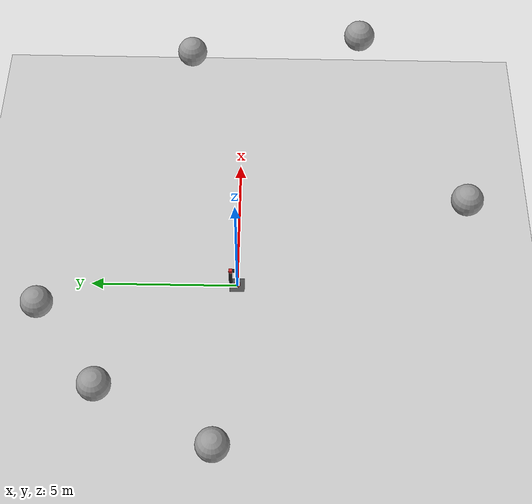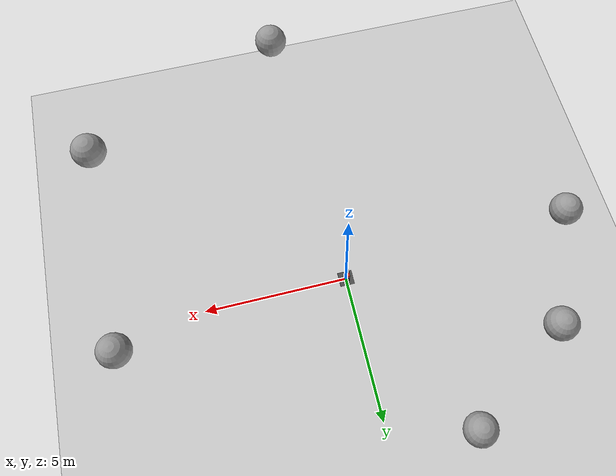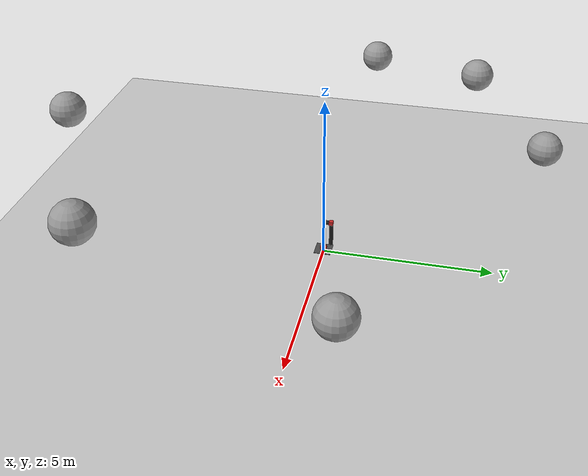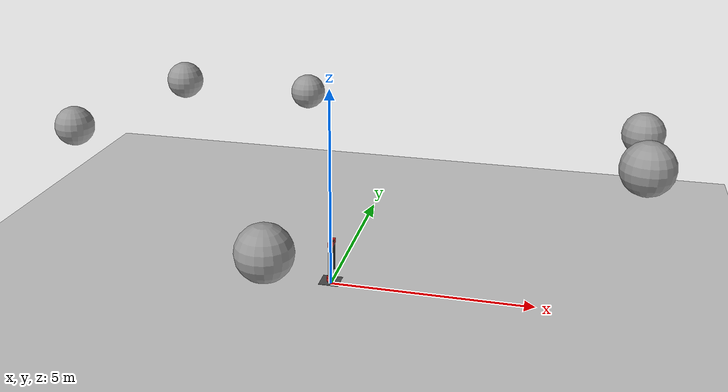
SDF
<sdf version="1.7">
 <world name="default">
  <include><uri>model://sun</uri></include>
  <include><uri>model://ground_plane</uri></include>
  <include><uri>model://PoseTest</uri></include>
  <gravity>0 0 -9.8</gravity>
  <magnetic_field>6e-06 2.3e-05 -4.2e-05</magnetic_field>
  <atmosphere type="adiabatic"/>
  <physics type="ode">
   <max_step_size>0.001</max_step_size>
   <real_time_factor>1</real_time_factor>
   <real_time_update_rate>1000</real_time_update_rate>
  </physics>
  <scene><ambient>0.4 0.4 0.4 1</ambient><background>0.7 0.7 0.7 1</background><shadows>1</shadows></scene>
  <spherical_coordinates>
   <surface_model>EARTH_WGS84</surface_model>
   <latitude_deg>0</latitude_deg>
   <longitude_deg>0</longitude_deg>
   <elevation>0</elevation>
   <heading_deg>0</heading_deg>
  </spherical_coordinates>
  <model name="unit_sphere">
   <pose>0.810404 -7.17312 4.39721 0 -0 0</pose>
   <link name="link">
    <inertial>
     <mass>1</mass>
     <inertia><ixx>0.1</ixx><ixy>0</ixy><ixz>0</ixz><iyy>0.1</iyy><iyz>0</iyz><izz>0.1</izz></inertia>
    </inertial>
    <collision name="collision"><geometry><sphere><radius>0.5</radius></sphere></geometry></collision>
    <visual name="visual">
     <geometry><sphere><radius>0.5</radius></sphere></geometry>
     <material>
      <script><name>Gazebo/Grey</name><uri>file://media/materials/scripts/gazebo.material</uri></script>
     </material>
    </visual>
    <kinematic>1</kinematic>
   </link>
  </model>
  <model name="unit_sphere_0">
   <pose>-6.85558 0.463626 3.40802 0 -0 0</pose>
   <link name="link">
    <inertial>
     <mass>1</mass>
     <inertia><ixx>0.1</ixx><ixy>0</ixy><ixz>0</ixz><iyy>0.1</iyy><iyz>0</iyz><izz>0.1</izz></inertia>
    </inertial>
    <collision name="collision"><geometry><sphere><radius>0.5</radius></sphere></geometry></collision>
    <visual name="visual">
     <geometry><sphere><radius>0.5</radius></sphere></geometry>
     <material>
      <script><name>Gazebo/Grey</name><uri>file://media/materials/scripts/gazebo.material</uri></script>
     </material>
    </visual>
    <kinematic>1</kinematic>
   </link>
  </model>
  <model name="unit_sphere_1">
   <pose>-2.27969 6.06715 3.01988 0 -0 0</pose>
   <link name="link">
    <inertial>
     <mass>1</mass>
     <inertia><ixx>0.1</ixx><ixy>0</ixy><ixz>0</ixz><iyy>0.1</iyy><iyz>0</iyz><izz>0.1</izz></inertia>
    </inertial>
    <collision name="collision"><geometry><sphere><radius>0.5</radius></sphere></geometry></collision>
    <visual name="visual">
     <geometry><sphere><radius>0.5</radius></sphere></geometry>
     <material>
      <script><name>Gazebo/Grey</name><uri>file://media/materials/scripts/gazebo.material</uri></script>
     </material>
    </visual>
    <kinematic>1</kinematic>
   </link>
  </model>
  <model name="unit_sphere_2">
   <pose>7.08686 1.6984 3.93607 0 -0 0</pose>
   <link name="link">
    <inertial>
     <mass>1</mass>
     <inertia><ixx>0.1</ixx><ixy>0</ixy><ixz>0</ixz><iyy>0.1</iyy><iyz>0</iyz><izz>0.1</izz></inertia>
    </inertial>
    <collision name="collision"><geometry><sphere><radius>0.5</radius></sphere></geometry></collision>
    <visual name="visual">
     <geometry><sphere><radius>0.5</radius></sphere></geometry>
     <material>
      <script><name>Gazebo/Grey</name><uri>file://media/materials/scripts/gazebo.material</uri></script>
     </material>
    </visual>
    <kinematic>1</kinematic>
   </link>
  </model>
  <model name="unit_sphere_3">
   <pose>6.78864 -3.9632 5.18841 0 -0 0</pose>
   <link name="link">
    <inertial>
     <mass>1</mass>
     <inertia><ixx>0.1</ixx><ixy>0</ixy><ixz>0</ixz><iyy>0.1</iyy><iyz>0</iyz><izz>0.1</izz></inertia>
    </inertial>
    <collision name="collision"><geometry><sphere><radius>0.5</radius></sphere></geometry></collision>
    <visual name="visual">
     <geometry><sphere><radius>0.5</radius></sphere></geometry>
     <material>
      <script><name>Gazebo/Grey</name><uri>file://media/materials/scripts/gazebo.material</uri></script>
     </material>
    </visual>
    <kinematic>1</kinematic>
   </link>
  </model>
  <model name="unit_sphere_4">
   <pose>-5.25364 3.90225 3.77427 0 -0 0</pose>
   <link name="link">
    <inertial>
     <mass>1</mass>
     <inertia><ixx>0.1</ixx><ixy>0</ixy><ixz>0</ixz><iyy>0.1</iyy><iyz>0</iyz><izz>0.1</izz></inertia>
    </inertial>
    <collision name="collision"><geometry><sphere><radius>0.5</radius></sphere></geometry></collision>
    <visual name="visual">
     <geometry><sphere><radius>0.5</radius></sphere></geometry>
     <material>
      <script><name>Gazebo/Grey</name><uri>file://media/materials/scripts/gazebo.material</uri></script>
     </material>
    </visual>
    <kinematic>1</kinematic>
   </link>
  </model>
 </world>
</sdf>

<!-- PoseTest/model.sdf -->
<sdf version='1.7'>
  <model name='PoseTest'>
    <link name='base'>
      <inertial>
        <mass>123.399</mass>
        <inertia>
          <ixx>8.44047</ixx>
          <ixy>0</ixy>
          <ixz>0</ixz>
          <iyy>8.44047</iyy>
          <iyz>0</iyz>
          <izz>0.222118</izz>
        </inertia>
        <pose>0 0 0 0 -0 0</pose>
      </inertial>
      <self_collide>0</self_collide>
      <enable_wind>0</enable_wind>
      <kinematic>0</kinematic>
      <pose>0 0 0.125 0 -0 0</pose>
      <gravity>1</gravity>
      <visual name='visual_1'>
        <geometry>
          <cylinder>
            <radius>0.06</radius>
            <length>0.9</length>
          </cylinder>
        </geometry>
        <material>
          <script>
            <name>Gazebo/FlatBlack</name>
            <uri>file://media/materials/scripts/gazebo.material</uri>
          </script>
          <shader type='pixel'>
            <normal_map>__default__</normal_map>
          </shader>
          <ambient>0.1 0.1 0.1 1</ambient>
          <diffuse>0.1 0.1 0.1 1</diffuse>
          <specular>0.01 0.01 0.01 1</specular>
          <emissive>0 0 0 1</emissive>
        </material>
        <pose>0 0 0.5 0 -0 0</pose>
        <transparency>0</transparency>
        <cast_shadows>1</cast_shadows>
      </visual>
      <visual name='visual'>
        <geometry>
          <cylinder>
            <radius>0.1</radius>
            <length>0.1</length>
          </cylinder>
        </geometry>
        <material>
          <script>
            <name>Gazebo/RedBright</name>
            <uri>file://media/materials/scripts/gazebo.material</uri>
          </script>
          <shader type='pixel'>
            <normal_map>__default__</normal_map>
          </shader>
          <ambient>0.87 0.26 0.07 1</ambient>
          <diffuse>0.87 0.26 0.07 1</diffuse>
          <specular>0.87 0.26 0.07 1</specular>
          <emissive>0 0 0 1</emissive>
        </material>
        <pose>0 0 0 0 -0 0</pose>
        <transparency>0</transparency>
        <cast_shadows>1</cast_shadows>
      </visual>
      <visual name='visual_2'>
        <geometry>
          <box>
            <size>0.5 0.5 0.01</size>
          </box>
        </geometry>
        <material>
          <script>
            <name>Gazebo/DarkGrey</name>
            <uri>file://media/materials/scripts/gazebo.material</uri>
          </script>
          <shader type='pixel'>
            <normal_map>__default__</normal_map>
          </shader>
          <ambient>0.175 0.175 0.175 1</ambient>
          <diffuse>0.175 0.175 0.175 1</diffuse>
          <specular>0.175 0.175 0.175 1</specular>
          <emissive>0 0 0 1</emissive>
        </material>
        <pose>0 0 -0.055 0 -0 0</pose>
        <transparency>0</transparency>
        <cast_shadows>1</cast_shadows>
      </visual>
      <collision name='collision_1'>
        <laser_retro>0</laser_retro>
        <max_contacts>10</max_contacts>
        <pose>0 0 0.5 0 -0 0</pose>
        <geometry>
          <cylinder>
            <radius>0.06</radius>
            <length>0.9</length>
          </cylinder>
        </geometry>
        <surface>
          <friction>
            <ode>
              <mu>1</mu>
              <mu2>1</mu2>
              <fdir1>0 0 0</fdir1>
              <slip1>0</slip1>
              <slip2>0</slip2>
            </ode>
            <torsional>
              <coefficient>1</coefficient>
              <patch_radius>0</patch_radius>
              <surface_radius>0</surface_radius>
              <use_patch_radius>1</use_patch_radius>
              <ode>
                <slip>0</slip>
              </ode>
            </torsional>
          </friction>
          <bounce>
            <restitution_coefficient>0</restitution_coefficient>
            <threshold>1e+06</threshold>
          </bounce>
          <contact>
            <collide_without_contact>0</collide_without_contact>
            <collide_without_contact_bitmask>1</collide_without_contact_bitmask>
            <collide_bitmask>1</collide_bitmask>
            <ode>
              <soft_cfm>0</soft_cfm>
              <soft_erp>0.2</soft_erp>
              <kp>1e+13</kp>
              <kd>1</kd>
              <max_vel>0.01</max_vel>
              <min_depth>0</min_depth>
            </ode>
            <bullet>
              <split_impulse>1</split_impulse>
              <split_impulse_penetration_threshold>-0.01</split_impulse_penetration_threshold>
              <soft_cfm>0</soft_cfm>
              <soft_erp>0.2</soft_erp>
              <kp>1e+13</kp>
              <kd>1</kd>
            </bullet>
          </contact>
        </surface>
      </collision>
      <collision name='collision_2'>
        <laser_retro>0</laser_retro>
        <max_contacts>10</max_contacts>
        <pose>0 0 -0.055 0 -0 0</pose>
        <geometry>
          <box>
            <size>0.5 0.5 0.01</size>
          </box>
        </geometry>
        <surface>
          <friction>
            <ode>
              <mu>1</mu>
              <mu2>1</mu2>
              <fdir1>0 0 0</fdir1>
              <slip1>0</slip1>
              <slip2>0</slip2>
            </ode>
            <torsional>
              <coefficient>1</coefficient>
              <patch_radius>0</patch_radius>
              <surface_radius>0</surface_radius>
              <use_patch_radius>1</use_patch_radius>
              <ode>
                <slip>0</slip>
              </ode>
            </torsional>
          </friction>
          <bounce>
            <restitution_coefficient>0</restitution_coefficient>
            <threshold>1e+06</threshold>
          </bounce>
          <contact>
            <collide_without_contact>0</collide_without_contact>
            <collide_without_contact_bitmask>1</collide_without_contact_bitmask>
            <collide_bitmask>1</collide_bitmask>
            <ode>
              <soft_cfm>0</soft_cfm>
              <soft_erp>0.2</soft_erp>
              <kp>1e+13</kp>
              <kd>1</kd>
              <max_vel>0.01</max_vel>
              <min_depth>0</min_depth>
            </ode>
            <bullet>
              <split_impulse>1</split_impulse>
              <split_impulse_penetration_threshold>-0.01</split_impulse_penetration_threshold>
              <soft_cfm>0</soft_cfm>
              <soft_erp>0.2</soft_erp>
              <kp>1e+13</kp>
              <kd>1</kd>
            </bullet>
          </contact>
        </surface>
      </collision>
      <collision name='collision'>
        <laser_retro>0</laser_retro>
        <max_contacts>10</max_contacts>
        <pose>0 0 0 0 -0 0</pose>
        <geometry>
          <cylinder>
            <radius>0.1</radius>
            <length>0.1</length>
          </cylinder>
        </geometry>
        <surface>
          <friction>
            <ode>
              <mu>1</mu>
              <mu2>1</mu2>
              <fdir1>0 0 0</fdir1>
              <slip1>0</slip1>
              <slip2>0</slip2>
            </ode>
            <torsional>
              <coefficient>1</coefficient>
              <patch_radius>0</patch_radius>
              <surface_radius>0</surface_radius>
              <use_patch_radius>1</use_patch_radius>
              <ode>
                <slip>0</slip>
              </ode>
            </torsional>
          </friction>
          <bounce>
            <restitution_coefficient>0</restitution_coefficient>
            <threshold>1e+06</threshold>
          </bounce>
          <contact>
            <collide_without_contact>0</collide_without_contact>
            <collide_without_contact_bitmask>1</collide_without_contact_bitmask>
            <collide_bitmask>1</collide_bitmask>
            <ode>
              <soft_cfm>0</soft_cfm>
              <soft_erp>0.2</soft_erp>
              <kp>1e+13</kp>
              <kd>1</kd>
              <max_vel>0.01</max_vel>
              <min_depth>0</min_depth>
            </ode>
            <bullet>
              <split_impulse>1</split_impulse>
              <split_impulse_penetration_threshold>-0.01</split_impulse_penetration_threshold>
              <soft_cfm>0</soft_cfm>
              <soft_erp>0.2</soft_erp>
              <kp>1e+13</kp>
              <kd>1</kd>
            </bullet>
          </contact>
        </surface>
      </collision>
    </link>
    <link name='bullet_spawner'>
      <pose>-0.000279 0.22008 0.21715 2e-06 2e-06 -2.8e-05</pose>
      <gravity>0</gravity>
      <self_collide>0</self_collide>
      <kinematic>0</kinematic>
      <enable_wind>0</enable_wind>
      <inertial>
        <pose>0 0 0 0 -0 0</pose>
        <inertia>
          <ixx>1</ixx>
          <ixy>0</ixy>
          <ixz>0</ixz>
          <iyy>1</iyy>
          <iyz>0</iyz>
          <izz>1</izz>
        </inertia>
        <mass>1</mass>
      </inertial>
      <visual name='visual'>
        <pose>0 0 0 0 -0 0</pose>
        <geometry>
          <sphere>
            <radius>0.08</radius>
          </sphere>
        </geometry>
        <material>
          <lighting>1</lighting>
          <shader type='pixel'/>
        </material>
        <transparency>1</transparency>
        <cast_shadows>0</cast_shadows>
      </visual>
    </link>
    <link name='pitch_1'>
      <inertial>
        <mass>26.041</mass>
        <inertia>
          <ixx>0.0624984</ixx>
          <ixy>0</ixy>
          <ixz>0</ixz>
          <iyy>0.0624984</iyy>
          <iyz>0</iyz>
          <izz>0.0624984</izz>
        </inertia>
        <pose>0 0 0 0 -0 0</pose>
      </inertial>
      <pose>0 0.22 1.06 0 -0 0</pose>
      <self_collide>0</self_collide>
      <enable_wind>0</enable_wind>
      <kinematic>0</kinematic>
      <gravity>1</gravity>
      <visual name='visual_1'>
        <geometry>
          <cylinder>
            <radius>0.06</radius>
            <length>0.7</length>
          </cylinder>
        </geometry>
        <material>
          <lighting>1</lighting>
          <script>
            <uri>file://media/materials/scripts/gazebo.material</uri>
            <name>Gazebo/FlatBlack</name>
          </script>
          <shader type='pixel'>
            <normal_map>__default__</normal_map>
          </shader>
        </material>
        <pose>0 0 -0.41 0 -0 0</pose>
        <transparency>0</transparency>
        <cast_shadows>1</cast_shadows>
      </visual>
      <visual name='visual'>
        <pose>0 0 0 0 -0 0</pose>
        <geometry>
          <box>
            <size>0.12 0.12 0.12</size>
          </box>
        </geometry>
        <material>
          <script>
            <name>Gazebo/RedBright</name>
            <uri>file://media/materials/scripts/gazebo.material</uri>
          </script>
          <shader type='pixel'>
            <normal_map>__default__</normal_map>
          </shader>
        </material>
        <transparency>0</transparency>
        <cast_shadows>1</cast_shadows>
      </visual>
      <collision name='collision'>
        <laser_retro>0</laser_retro>
        <max_contacts>10</max_contacts>
        <pose>0 0 0 0 -0 0</pose>
        <geometry>
          <box>
            <size>0.12 0.12 0.12</size>
          </box>
        </geometry>
        <surface>
          <friction>
            <ode>
              <mu>1</mu>
              <mu2>1</mu2>
              <fdir1>0 0 0</fdir1>
              <slip1>0</slip1>
              <slip2>0</slip2>
            </ode>
            <torsional>
              <coefficient>1</coefficient>
              <patch_radius>0</patch_radius>
              <surface_radius>0</surface_radius>
              <use_patch_radius>1</use_patch_radius>
              <ode>
                <slip>0</slip>
              </ode>
            </torsional>
          </friction>
          <bounce>
            <restitution_coefficient>0</restitution_coefficient>
            <threshold>1e+06</threshold>
          </bounce>
          <contact>
            <collide_without_contact>0</collide_without_contact>
            <collide_without_contact_bitmask>1</collide_without_contact_bitmask>
            <collide_bitmask>1</collide_bitmask>
            <ode>
              <soft_cfm>0</soft_cfm>
              <soft_erp>0.2</soft_erp>
              <kp>1e+13</kp>
              <kd>1</kd>
              <max_vel>0.01</max_vel>
              <min_depth>0</min_depth>
            </ode>
            <bullet>
              <split_impulse>1</split_impulse>
              <split_impulse_penetration_threshold>-0.01</split_impulse_penetration_threshold>
              <soft_cfm>0</soft_cfm>
              <soft_erp>0.2</soft_erp>
              <kp>1e+13</kp>
              <kd>1</kd>
            </bullet>
          </contact>
        </surface>
      </collision>
      <collision name='collision_1'>
        <laser_retro>0</laser_retro>
        <max_contacts>10</max_contacts>
        <pose>0 0 -0.41 0 -0 0</pose>
        <geometry>
          <cylinder>
            <radius>0.06</radius>
            <length>0.7</length>
          </cylinder>
        </geometry>
        <surface>
          <friction>
            <ode>
              <mu>1</mu>
              <mu2>1</mu2>
              <fdir1>0 0 0</fdir1>
              <slip1>0</slip1>
              <slip2>0</slip2>
            </ode>
            <torsional>
              <coefficient>1</coefficient>
              <patch_radius>0</patch_radius>
              <surface_radius>0</surface_radius>
              <use_patch_radius>1</use_patch_radius>
              <ode>
                <slip>0</slip>
              </ode>
            </torsional>
          </friction>
          <bounce>
            <restitution_coefficient>0</restitution_coefficient>
            <threshold>1e+06</threshold>
          </bounce>
          <contact>
            <collide_without_contact>0</collide_without_contact>
            <collide_without_contact_bitmask>1</collide_without_contact_bitmask>
            <collide_bitmask>1</collide_bitmask>
            <ode>
              <soft_cfm>0</soft_cfm>
              <soft_erp>0.2</soft_erp>
              <kp>1e+13</kp>
              <kd>1</kd>
              <max_vel>0.01</max_vel>
              <min_depth>0</min_depth>
            </ode>
            <bullet>
              <split_impulse>1</split_impulse>
              <split_impulse_penetration_threshold>-0.01</split_impulse_penetration_threshold>
              <soft_cfm>0</soft_cfm>
              <soft_erp>0.2</soft_erp>
              <kp>1e+13</kp>
              <kd>1</kd>
            </bullet>
          </contact>
        </surface>
      </collision>
    </link>
    <link name='yaw_1'>
      <inertial>
        <mass>7.71923</mass>
        <inertia>
          <ixx>0.01338</ixx>
          <ixy>0</ixy>
          <ixz>0</ixz>
          <iyy>0.01338</iyy>
          <iyz>0</iyz>
          <izz>0.0138946</izz>
        </inertia>
        <pose>0 0 0 0 -0 0</pose>
      </inertial>
      <pose>0 0 1.06 0 -0 0</pose>
      <self_collide>0</self_collide>
      <enable_wind>0</enable_wind>
      <kinematic>0</kinematic>
      <gravity>1</gravity>
      <visual name='visual_2'>
        <geometry>
          <cylinder>
            <radius>0.06</radius>
            <length>0.1</length>
          </cylinder>
        </geometry>
        <material>
          <script>
            <name>Gazebo/FlatBlack</name>
            <uri>file://media/materials/scripts/gazebo.material</uri>
          </script>
          <shader type='pixel'>
            <normal_map>__default__</normal_map>
          </shader>
          <ambient>0.1 0.1 0.1 1</ambient>
          <diffuse>0.1 0.1 0.1 1</diffuse>
          <specular>0.01 0.01 0.01 1</specular>
          <emissive>0 0 0 1</emissive>
        </material>
        <pose>0 0.11 0 1.57 -0 0</pose>
        <transparency>0</transparency>
        <cast_shadows>1</cast_shadows>
      </visual>
      <visual name='visual'>
        <geometry>
          <box>
            <size>0.12 0.12 0.12</size>
          </box>
        </geometry>
        <material>
          <script>
            <name>Gazebo/RedBright</name>
            <uri>file://media/materials/scripts/gazebo.material</uri>
          </script>
          <shader type='pixel'>
            <normal_map>__default__</normal_map>
          </shader>
          <ambient>0.87 0.26 0.07 1</ambient>
          <diffuse>0.87 0.26 0.07 1</diffuse>
          <specular>0.87 0.26 0.07 1</specular>
          <emissive>0 0 0 1</emissive>
        </material>
        <pose>0 0 0 0 -0 0</pose>
        <transparency>0</transparency>
        <cast_shadows>1</cast_shadows>
      </visual>
      <collision name='collision'>
        <laser_retro>0</laser_retro>
        <max_contacts>10</max_contacts>
        <pose>0 0 0 0 -0 0</pose>
        <geometry>
          <box>
            <size>0.12 0.12 0.12</size>
          </box>
        </geometry>
        <surface>
          <friction>
            <ode>
              <mu>1</mu>
              <mu2>1</mu2>
              <fdir1>0 0 0</fdir1>
              <slip1>0</slip1>
              <slip2>0</slip2>
            </ode>
            <torsional>
              <coefficient>1</coefficient>
              <patch_radius>0</patch_radius>
              <surface_radius>0</surface_radius>
              <use_patch_radius>1</use_patch_radius>
              <ode>
                <slip>0</slip>
              </ode>
            </torsional>
          </friction>
          <bounce>
            <restitution_coefficient>0</restitution_coefficient>
            <threshold>1e+06</threshold>
          </bounce>
          <contact>
            <collide_without_contact>0</collide_without_contact>
            <collide_without_contact_bitmask>1</collide_without_contact_bitmask>
            <collide_bitmask>1</collide_bitmask>
            <ode>
              <soft_cfm>0</soft_cfm>
              <soft_erp>0.2</soft_erp>
              <kp>1e+13</kp>
              <kd>1</kd>
              <max_vel>0.01</max_vel>
              <min_depth>0</min_depth>
            </ode>
            <bullet>
              <split_impulse>1</split_impulse>
              <split_impulse_penetration_threshold>-0.01</split_impulse_penetration_threshold>
              <soft_cfm>0</soft_cfm>
              <soft_erp>0.2</soft_erp>
              <kp>1e+13</kp>
              <kd>1</kd>
            </bullet>
          </contact>
        </surface>
      </collision>
      <collision name='collision_2'>
        <laser_retro>0</laser_retro>
        <max_contacts>10</max_contacts>
        <pose>0 0.11 0 1.57 -0 0</pose>
        <geometry>
          <cylinder>
            <radius>0.06</radius>
            <length>0.1</length>
          </cylinder>
        </geometry>
        <surface>
          <friction>
            <ode>
              <mu>1</mu>
              <mu2>1</mu2>
              <fdir1>0 0 0</fdir1>
              <slip1>0</slip1>
              <slip2>0</slip2>
            </ode>
            <torsional>
              <coefficient>1</coefficient>
              <patch_radius>0</patch_radius>
              <surface_radius>0</surface_radius>
              <use_patch_radius>1</use_patch_radius>
              <ode>
                <slip>0</slip>
              </ode>
            </torsional>
          </friction>
          <bounce>
            <restitution_coefficient>0</restitution_coefficient>
            <threshold>1e+06</threshold>
          </bounce>
          <contact>
            <collide_without_contact>0</collide_without_contact>
            <collide_without_contact_bitmask>1</collide_without_contact_bitmask>
            <collide_bitmask>1</collide_bitmask>
            <ode>
              <soft_cfm>0</soft_cfm>
              <soft_erp>0.2</soft_erp>
              <kp>1e+13</kp>
              <kd>1</kd>
              <max_vel>0.01</max_vel>
              <min_depth>0</min_depth>
            </ode>
            <bullet>
              <split_impulse>1</split_impulse>
              <split_impulse_penetration_threshold>-0.01</split_impulse_penetration_threshold>
              <soft_cfm>0</soft_cfm>
              <soft_erp>0.2</soft_erp>
              <kp>1e+13</kp>
              <kd>1</kd>
            </bullet>
          </contact>
        </surface>
      </collision>
    </link>
    <joint name='base_yaw_1' type='revolute'>
      <parent>base</parent>
      <child>yaw_1</child>
      <pose>0 0 0 0 -0 0</pose>
      <axis>
        <xyz>0 0 -1</xyz>
        <limit>
          <lower>-1.79769e+308</lower>
          <upper>1.79769e+308</upper>
          <effort>-1</effort>
          <velocity>-1</velocity>
        </limit>
        <dynamics>
          <spring_reference>0</spring_reference>
          <spring_stiffness>0</spring_stiffness>
          <damping>0</damping>
          <friction>0</friction>
        </dynamics>
      </axis>
      <physics>
        <ode>
          <limit>
            <cfm>0</cfm>
            <erp>0.2</erp>
          </limit>
          <suspension>
            <cfm>0</cfm>
            <erp>0.2</erp>
          </suspension>
        </ode>
      </physics>
    </joint>
    <joint name='pitch_1_bullet_spawner' type='fixed'>
      <parent>pitch_1</parent>
      <child>bullet_spawner</child>
      <pose>0 0 0 0 -0 0</pose>
      <physics>
        <ode>
          <limit>
            <cfm>0</cfm>
            <erp>0.2</erp>
          </limit>
          <suspension>
            <cfm>0</cfm>
            <erp>0.2</erp>
          </suspension>
        </ode>
      </physics>
    </joint>
    <joint name='yaw_1_pitch_1' type='revolute'>
      <parent>yaw_1</parent>
      <child>pitch_1</child>
      <pose>0 0 0 0 -0 0</pose>
      <axis>
        <xyz>-0 -1 -0</xyz>
        <limit>
          <lower>-1.79769e+308</lower>
          <upper>1.79769e+308</upper>
          <effort>-1</effort>
          <velocity>-1</velocity>
        </limit>
        <dynamics>
          <spring_reference>0</spring_reference>
          <spring_stiffness>0</spring_stiffness>
          <damping>0</damping>
          <friction>0</friction>
        </dynamics>
      </axis>
      <physics>
        <ode>
          <limit>
            <cfm>0</cfm>
            <erp>0.2</erp>
          </limit>
          <suspension>
            <cfm>0</cfm>
            <erp>0.2</erp>
          </suspension>
        </ode>
      </physics>
    </joint>
    <static>0</static>
    <allow_auto_disable>1</allow_auto_disable>
    <plugin name='PoseTestPlugin' filename='libPoseTestPlugin.so'>
      <p_term>1</p_term>
      <i_term>0</i_term>
      <d_term>4</d_term>
    </plugin>
  </model>
</sdf>
